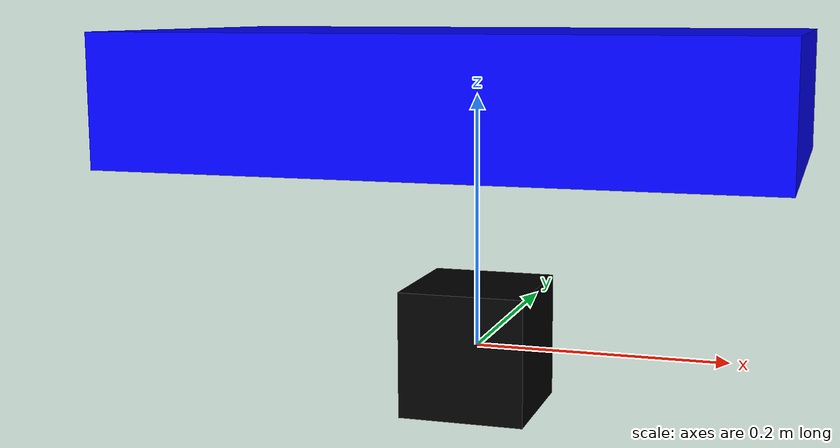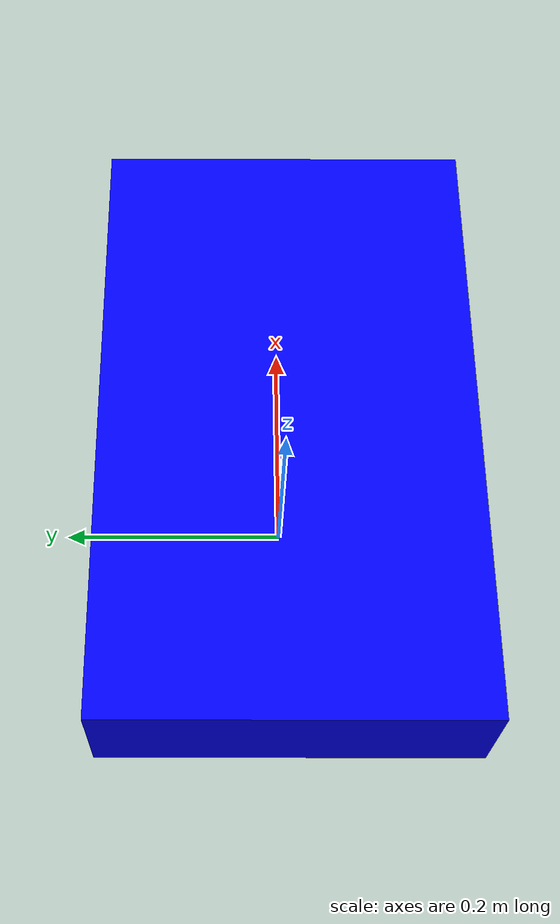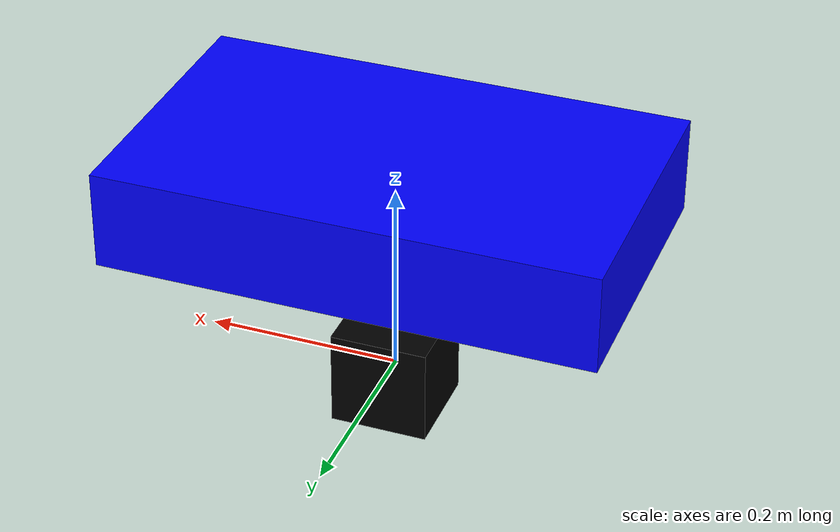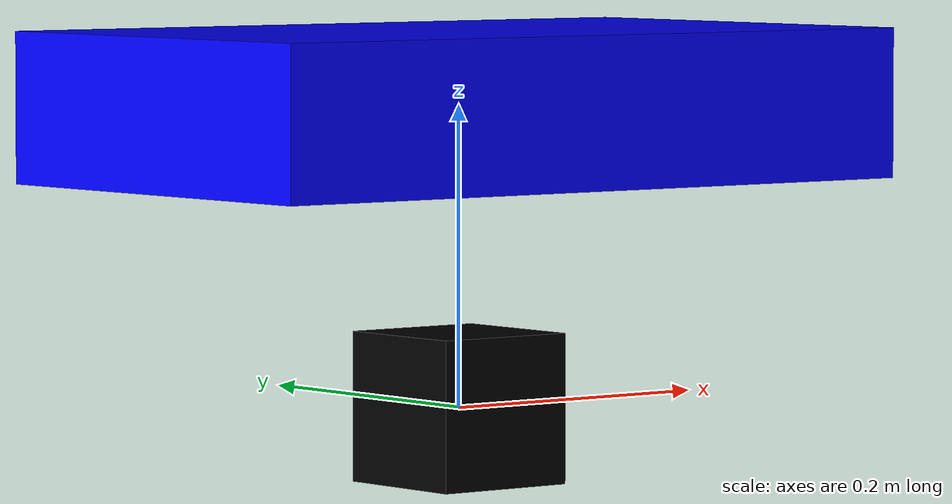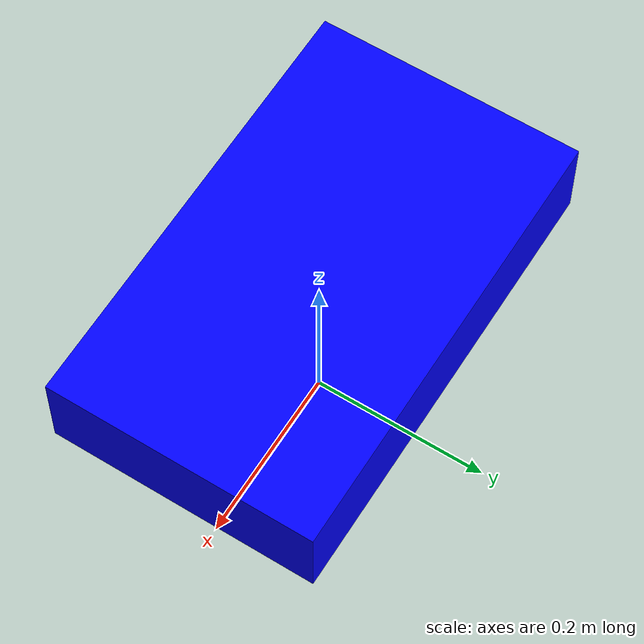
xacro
<?xml version="1.0"?>
<robot name="odom_to_tf_frames">

  <!-- Link for the odometry frame (world frame) -->
  <link name="odom">
    <visual>
      <origin xyz="0 0 0" rpy="0 0 0"/>
      <geometry>
        <box size="0.1 0.1 0.1"/>
      </geometry>
      <material name="invisible">
        <color rgba="0 0 0 0"/>
      </material>
    </visual>
  </link>

  <!-- Link for the base of the robot -->
  <link name="base_link">
    <visual>
      <origin xyz="0 0 0.2" rpy="0 0 0"/>
      <geometry>
        <box size="0.5 0.3 0.1"/>
      </geometry>
      <material name="blue">
        <color rgba="0.0 0.0 1.0 1.0"/>
      </material>
    </visual>
  </link>

  <!-- Joint connecting odom to base_link (static for now) -->
  <joint name="odom_to_base_link" type="fixed">
    <parent link="odom"/>
    <child link="base_link"/>
    <origin xyz="0 0 0" rpy="0 0 0"/>
  </joint>

</robot>
